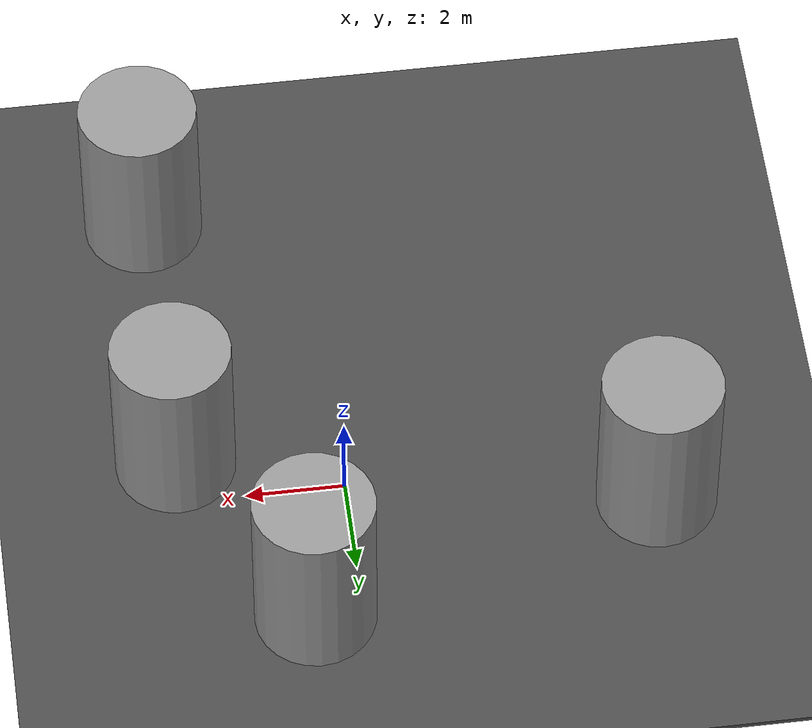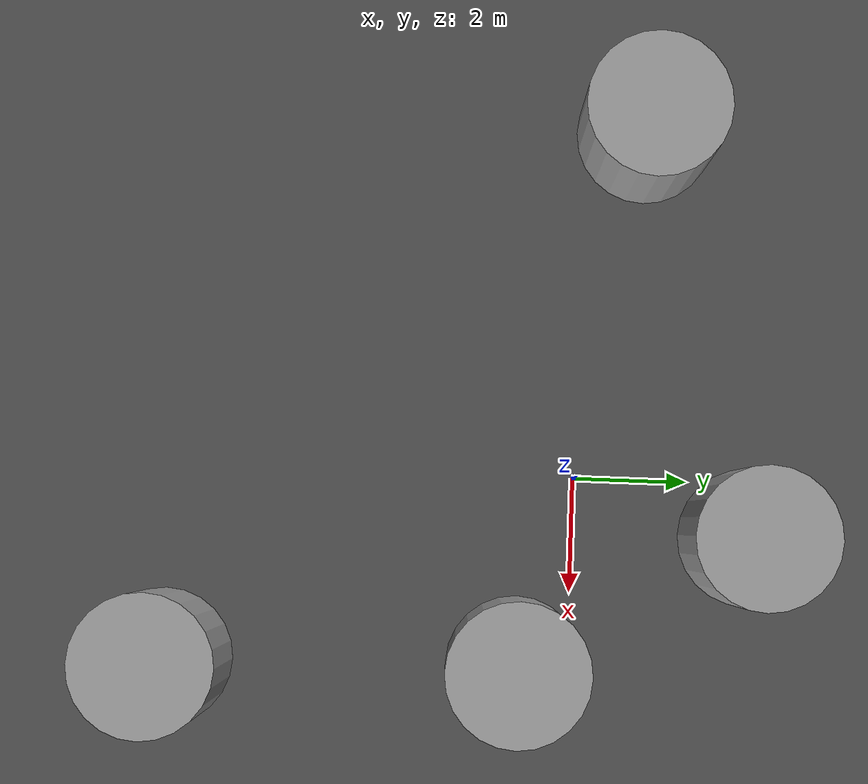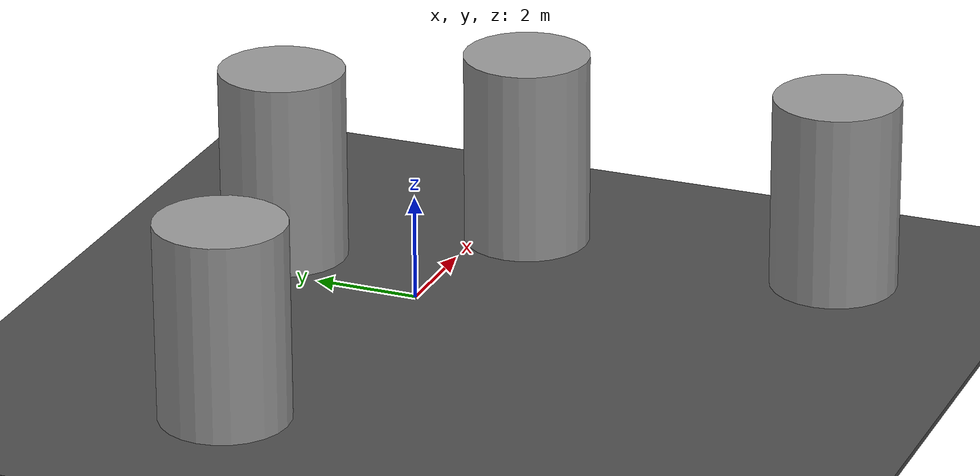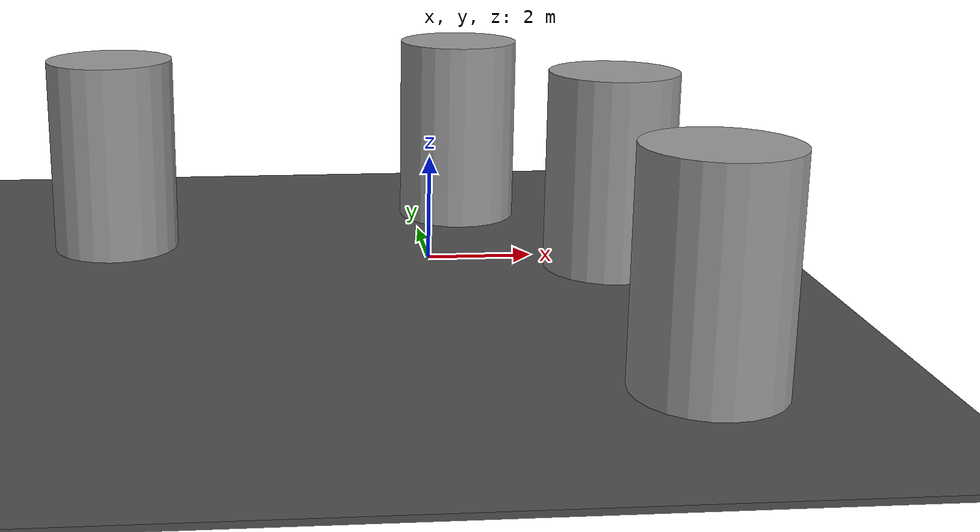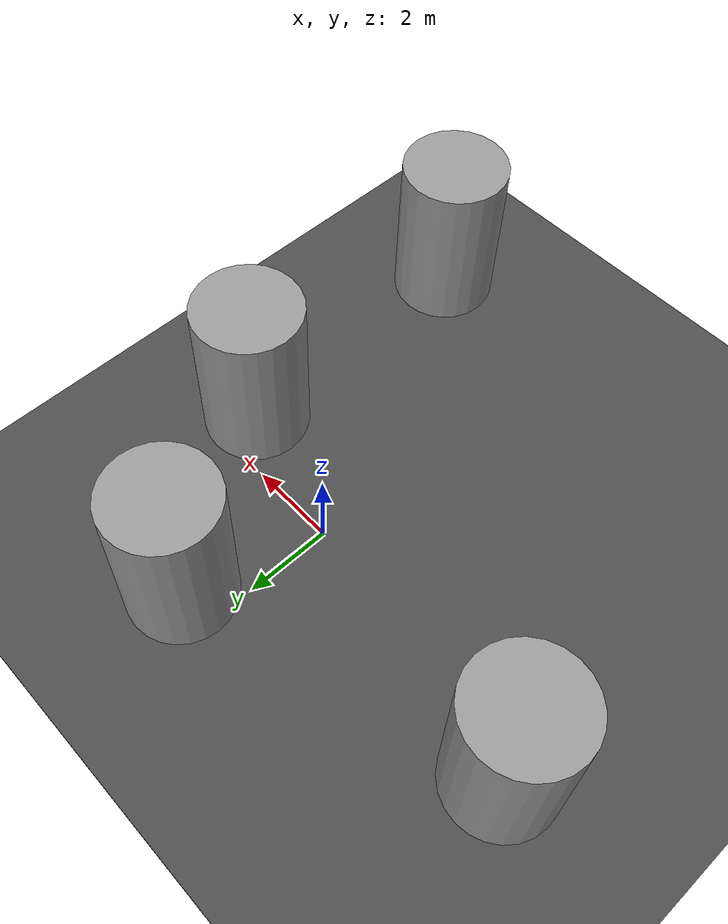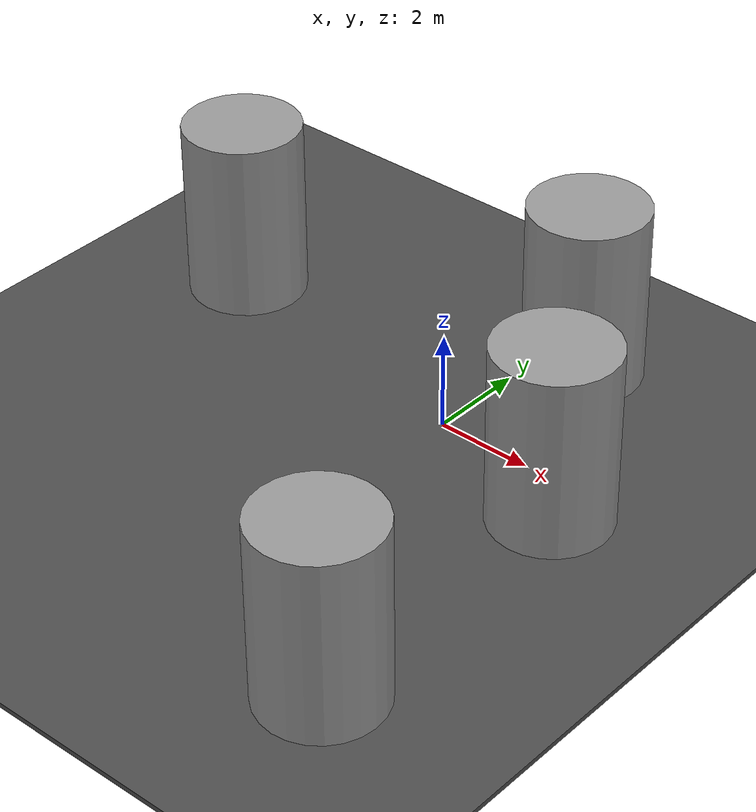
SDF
<sdf version="1.7">
 <world name="default">
  <light name="sun" type="directional">
   <pose>0 0 10 0 -0 0</pose>
   <diffuse>0.8 0.8 0.8 1</diffuse>
   <specular>0.2 0.2 0.2 1</specular>
   <attenuation>
    <range>1000</range>
    <constant>0.9</constant>
    <linear>0.01</linear>
    <quadratic>0.001</quadratic>
   </attenuation>
   <direction>-0.5 0.1 -0.9</direction>
   <spot><inner_angle>0</inner_angle><outer_angle>0</outer_angle><falloff>0</falloff></spot>
  </light>
  <model name="ground_plane">
   <static>1</static>
   <link name="link">
    <collision name="collision">
     <geometry><plane><normal>0 0 1</normal><size>100 100</size></plane></geometry>
     <surface>
      <contact><collide_bitmask>65535</collide_bitmask></contact>
      <friction><ode><mu>100</mu><mu2>50</mu2></ode></friction>
     </surface>
    </collision>
    <visual name="visual">
     <cast_shadows>0</cast_shadows>
     <geometry><plane><normal>0 0 1</normal><size>100 100</size></plane></geometry>
     <material>
      <script><uri>file://media/materials/scripts/gazebo.material</uri><name>Gazebo/Grey</name></script>
     </material>
    </visual>
   </link>
  </model>
  <model name="asphalt_plane">
   <static>1</static>
   <link name="link">
    <collision name="collision"><geometry><box><size>200 200 0.1</size></box></geometry></collision>
    <visual name="visual">
     <cast_shadows>0</cast_shadows>
     <geometry><box><size>200 200 0.1</size></box></geometry>
     <material>
      <script>
       <uri>model://asphalt_plane/materials/scripts</uri>
       <uri>model://asphalt_plane/materials/textures</uri>
       <name>vrc/asphalt</name>
      </script>
     </material>
    </visual>
   </link>
  </model>
  <physics name="default_physics" default="0" type="ode">
   <ode>
    <solver>
     <type>quick</type>
     <iters>10</iters>
     <sor>1.3</sor>
     <use_dynamic_moi_rescaling>0</use_dynamic_moi_rescaling>
    </solver>
    <constraints>
     <cfm>0</cfm>
     <erp>0.2</erp>
     <contact_max_correcting_vel>100</contact_max_correcting_vel>
     <contact_surface_layer>0.001</contact_surface_layer>
    </constraints>
   </ode>
   <max_step_size>0.004</max_step_size>
   <real_time_factor>1</real_time_factor>
   <real_time_update_rate>250</real_time_update_rate>
  </physics>
  <gravity>0 0 -9.8066</gravity>
  <magnetic_field>6e-06 2.3e-05 -4.2e-05</magnetic_field>
  <atmosphere type="adiabatic"/>
  <scene><ambient>0.4 0.4 0.4 1</ambient><background>0.7 0.7 0.7 1</background><shadows>1</shadows></scene>
  <spherical_coordinates>
   <surface_model>EARTH_WGS84</surface_model>
   <latitude_deg>0</latitude_deg>
   <longitude_deg>0</longitude_deg>
   <elevation>0</elevation>
   <heading_deg>0</heading_deg>
  </spherical_coordinates>
  <model name="unit_cylinder">
   <pose>3.29823 -0.933109 1.91891 3.9e-05 3.3e-05 -0.004572</pose>
   <link name="link">
    <inertial>
     <mass>1</mass>
     <inertia><ixx>0.145833</ixx><ixy>0</ixy><ixz>0</ixz><iyy>0.145833</iyy><iyz>0</iyz><izz>0.125</izz></inertia>
    </inertial>
    <collision name="collision">
     <geometry><cylinder><radius>1.20875</radius><length>3.73777</length></cylinder></geometry>
    </collision>
    <visual name="visual">
     <geometry><cylinder><radius>1.20875</radius><length>3.73777</length></cylinder></geometry>
     <material>
      <script><name>Gazebo/Grey</name><uri>file://media/materials/scripts/gazebo.material</uri></script>
     </material>
    </visual>
   </link>
  </model>
  <model name="unit_cylinder_clone">
   <pose>0.941252 3.07943 1.91895 -7.5e-05 -3.8e-05 -0.004452</pose>
   <link name="link">
    <inertial>
     <mass>1</mass>
     <inertia><ixx>0.145833</ixx><ixy>0</ixy><ixz>0</ixz><iyy>0.145833</iyy><iyz>0</iyz><izz>0.125</izz></inertia>
    </inertial>
    <collision name="collision">
     <geometry><cylinder><radius>1.20875</radius><length>3.73777</length></cylinder></geometry>
    </collision>
    <visual name="visual">
     <geometry><cylinder><radius>1.20875</radius><length>3.73777</length></cylinder></geometry>
     <material>
      <script><name>Gazebo/Grey</name><uri>file://media/materials/scripts/gazebo.material</uri></script>
     </material>
    </visual>
   </link>
  </model>
  <model name="unit_cylinder_clone_clone">
   <pose>3.34969 -7.08656 1.91891 -3e-05 -2.3e-05 -0.0045</pose>
   <link name="link">
    <inertial>
     <mass>1</mass>
     <inertia><ixx>0.145833</ixx><ixy>0</ixy><ixz>0</ixz><iyy>0.145833</iyy><iyz>0</iyz><izz>0.125</izz></inertia>
    </inertial>
    <collision name="collision">
     <geometry><cylinder><radius>1.20875</radius><length>3.73777</length></cylinder></geometry>
    </collision>
    <visual name="visual">
     <geometry><cylinder><radius>1.20875</radius><length>3.73777</length></cylinder></geometry>
     <material>
      <script><name>Gazebo/Grey</name><uri>file://media/materials/scripts/gazebo.material</uri></script>
     </material>
    </visual>
   </link>
  </model>
  <model name="unit_cylinder_clone_clone_clone">
   <pose>-6.12902 1.09699 1.91886 -0 2e-06 -0.004509</pose>
   <link name="link">
    <inertial>
     <mass>1</mass>
     <inertia><ixx>0.145833</ixx><ixy>0</ixy><ixz>0</ixz><iyy>0.145833</iyy><iyz>0</iyz><izz>0.125</izz></inertia>
    </inertial>
    <collision name="collision">
     <geometry><cylinder><radius>1.20875</radius><length>3.73777</length></cylinder></geometry>
    </collision>
    <visual name="visual">
     <geometry><cylinder><radius>1.20875</radius><length>3.73777</length></cylinder></geometry>
     <material>
      <script><name>Gazebo/Grey</name><uri>file://media/materials/scripts/gazebo.material</uri></script>
     </material>
    </visual>
   </link>
  </model>
 </world>
</sdf>
